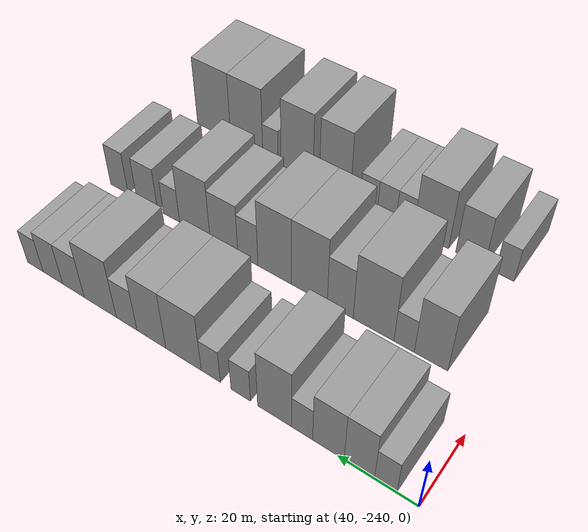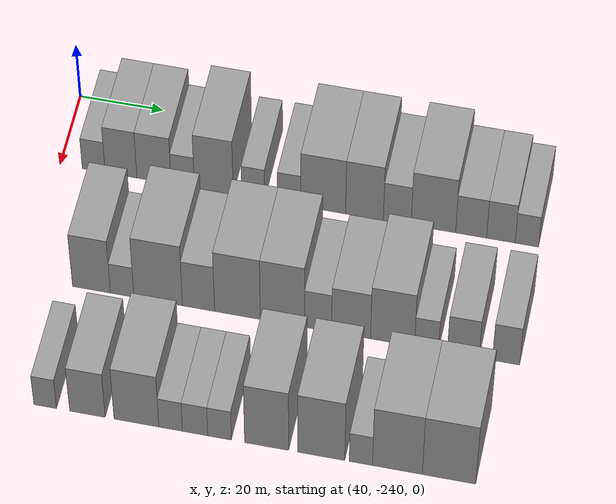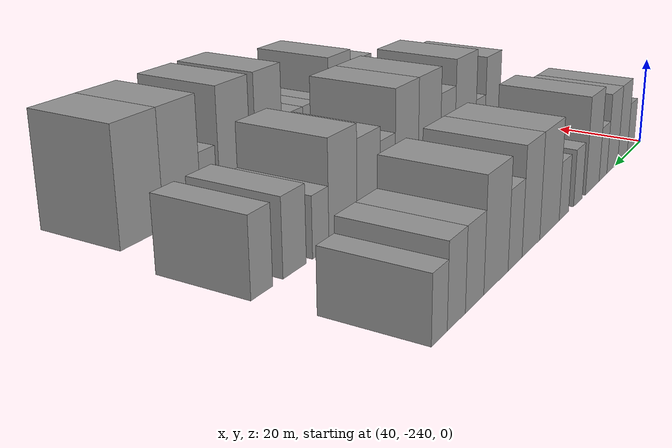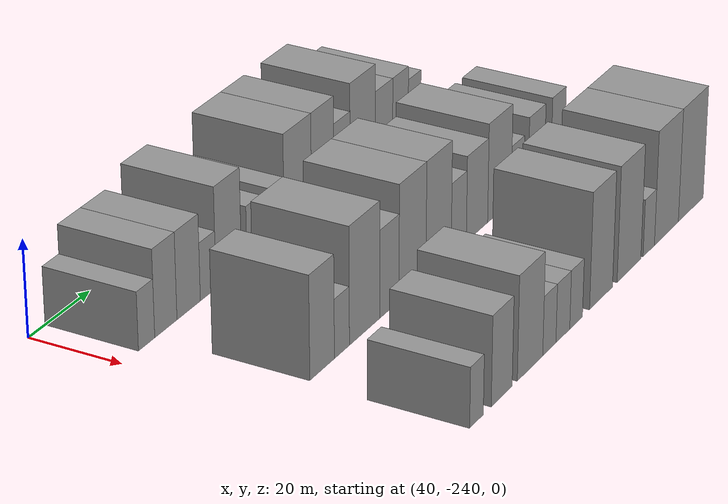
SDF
<sdf version="1.6">
 <world name="default">
  <model name="building_15">
   <static>1</static>
   <pose>50.0000 -231.9547 0 0.000000 0.000000 0.000000</pose>
   <link name="link">
    <pose>0 0 6.00 0 0 0</pose>
    <collision name="collision"><geometry><box><size>20.0000 5.4256 12.0000</size></box></geometry></collision>
    <visual name="visual">
     <cast_shadows>0</cast_shadows>
     <geometry><box><size>20.0000 5.4256 12.0000</size></box></geometry>
     <material>
      <script>
       <uri>model://grey_wall/materials/scripts</uri>
       <uri>model://grey_wall/materials/textures</uri>
       <name>vrc/grey_wall</name>
      </script>
     </material>
    </visual>
   </link>
  </model>
  <model name="building_16">
   <static>1</static>
   <pose>50.0000 -225.4672 0 0.000000 0.000000 0.000000</pose>
   <link name="link">
    <pose>0 0 9.00 0 0 0</pose>
    <collision name="collision"><geometry><box><size>20.0000 7.5494 18.0000</size></box></geometry></collision>
    <visual name="visual">
     <cast_shadows>0</cast_shadows>
     <geometry><box><size>20.0000 7.5494 18.0000</size></box></geometry>
     <material>
      <script>
       <uri>model://grey_wall/materials/scripts</uri>
       <uri>model://grey_wall/materials/textures</uri>
       <name>vrc/grey_wall</name>
      </script>
     </material>
    </visual>
   </link>
  </model>
  <model name="building_17">
   <static>1</static>
   <pose>50.0000 -217.6418 0 0.000000 0.000000 0.000000</pose>
   <link name="link">
    <pose>0 0 9.00 0 0 0</pose>
    <collision name="collision"><geometry><box><size>20.0000 8.1012 18.0000</size></box></geometry></collision>
    <visual name="visual">
     <cast_shadows>0</cast_shadows>
     <geometry><box><size>20.0000 8.1012 18.0000</size></box></geometry>
     <material>
      <script>
       <uri>model://grey_wall/materials/scripts</uri>
       <uri>model://grey_wall/materials/textures</uri>
       <name>vrc/grey_wall</name>
      </script>
     </material>
    </visual>
   </link>
  </model>
  <model name="building_18">
   <static>1</static>
   <pose>50.0000 -210.8297 0 0.000000 0.000000 0.000000</pose>
   <link name="link">
    <pose>0 0 6.00 0 0 0</pose>
    <collision name="collision"><geometry><box><size>20.0000 5.5230 12.0000</size></box></geometry></collision>
    <visual name="visual">
     <cast_shadows>0</cast_shadows>
     <geometry><box><size>20.0000 5.5230 12.0000</size></box></geometry>
     <material>
      <script>
       <uri>model://grey_wall/materials/scripts</uri>
       <uri>model://grey_wall/materials/textures</uri>
       <name>vrc/grey_wall</name>
      </script>
     </material>
    </visual>
   </link>
  </model>
  <model name="building_19">
   <static>1</static>
   <pose>50.0000 -203.4928 0 0.000000 0.000000 0.000000</pose>
   <link name="link">
    <pose>0 0 10.50 0 0 0</pose>
    <collision name="collision"><geometry><box><size>20.0000 9.1509 21.0000</size></box></geometry></collision>
    <visual name="visual">
     <cast_shadows>0</cast_shadows>
     <geometry><box><size>20.0000 9.1509 21.0000</size></box></geometry>
     <material>
      <script>
       <uri>model://grey_wall/materials/scripts</uri>
       <uri>model://grey_wall/materials/textures</uri>
       <name>vrc/grey_wall</name>
      </script>
     </material>
    </visual>
   </link>
  </model>
  <model name="building_20">
   <static>1</static>
   <pose>50.0000 -194.2087 0 0.000000 0.000000 0.000000</pose>
   <link name="link">
    <pose>0 0 6.00 0 0 0</pose>
    <collision name="collision"><geometry><box><size>20.0000 5.4173 12.0000</size></box></geometry></collision>
    <visual name="visual">
     <cast_shadows>0</cast_shadows>
     <geometry><box><size>20.0000 5.4173 12.0000</size></box></geometry>
     <material>
      <script>
       <uri>model://grey_wall/materials/scripts</uri>
       <uri>model://grey_wall/materials/textures</uri>
       <name>vrc/grey_wall</name>
      </script>
     </material>
    </visual>
   </link>
  </model>
  <model name="building_21">
   <static>1</static>
   <pose>50.0000 -185.7538 0 0.000000 0.000000 0.000000</pose>
   <link name="link">
    <pose>0 0 6.00 0 0 0</pose>
    <collision name="collision"><geometry><box><size>20.0000 5.4925 12.0000</size></box></geometry></collision>
    <visual name="visual">
     <cast_shadows>0</cast_shadows>
     <geometry><box><size>20.0000 5.4925 12.0000</size></box></geometry>
     <material>
      <script>
       <uri>model://grey_wall/materials/scripts</uri>
       <uri>model://grey_wall/materials/textures</uri>
       <name>vrc/grey_wall</name>
      </script>
     </material>
    </visual>
   </link>
  </model>
  <model name="building_22">
   <static>1</static>
   <pose>50.0000 -177.7579 0 0.000000 0.000000 0.000000</pose>
   <link name="link">
    <pose>0 0 10.50 0 0 0</pose>
    <collision name="collision"><geometry><box><size>20.0000 10.4993 21.0000</size></box></geometry></collision>
    <visual name="visual">
     <cast_shadows>0</cast_shadows>
     <geometry><box><size>20.0000 10.4993 21.0000</size></box></geometry>
     <material>
      <script>
       <uri>model://grey_wall/materials/scripts</uri>
       <uri>model://grey_wall/materials/textures</uri>
       <name>vrc/grey_wall</name>
      </script>
     </material>
    </visual>
   </link>
  </model>
  <model name="building_23">
   <static>1</static>
   <pose>50.0000 -168.1030 0 0.000000 0.000000 0.000000</pose>
   <link name="link">
    <pose>0 0 10.50 0 0 0</pose>
    <collision name="collision"><geometry><box><size>20.0000 8.8106 21.0000</size></box></geometry></collision>
    <visual name="visual">
     <cast_shadows>0</cast_shadows>
     <geometry><box><size>20.0000 8.8106 21.0000</size></box></geometry>
     <material>
      <script>
       <uri>model://grey_wall/materials/scripts</uri>
       <uri>model://grey_wall/materials/textures</uri>
       <name>vrc/grey_wall</name>
      </script>
     </material>
    </visual>
   </link>
  </model>
  <model name="building_24">
   <static>1</static>
   <pose>50.0000 -160.4572 0 0.000000 0.000000 0.000000</pose>
   <link name="link">
    <pose>0 0 7.50 0 0 0</pose>
    <collision name="collision"><geometry><box><size>20.0000 6.4809 15.0000</size></box></geometry></collision>
    <visual name="visual">
     <cast_shadows>0</cast_shadows>
     <geometry><box><size>20.0000 6.4809 15.0000</size></box></geometry>
     <material>
      <script>
       <uri>model://grey_wall/materials/scripts</uri>
       <uri>model://grey_wall/materials/textures</uri>
       <name>vrc/grey_wall</name>
      </script>
     </material>
    </visual>
   </link>
  </model>
  <model name="building_25">
   <static>1</static>
   <pose>50.0000 -152.0368 0 0.000000 0.000000 0.000000</pose>
   <link name="link">
    <pose>0 0 10.50 0 0 0</pose>
    <collision name="collision"><geometry><box><size>20.0000 10.3600 21.0000</size></box></geometry></collision>
    <visual name="visual">
     <cast_shadows>0</cast_shadows>
     <geometry><box><size>20.0000 10.3600 21.0000</size></box></geometry>
     <material>
      <script>
       <uri>model://grey_wall/materials/scripts</uri>
       <uri>model://grey_wall/materials/textures</uri>
       <name>vrc/grey_wall</name>
      </script>
     </material>
    </visual>
   </link>
  </model>
  <model name="building_26">
   <static>1</static>
   <pose>50.0000 -143.2596 0 0.000000 0.000000 0.000000</pose>
   <link name="link">
    <pose>0 0 7.50 0 0 0</pose>
    <collision name="collision"><geometry><box><size>20.0000 7.1944 15.0000</size></box></geometry></collision>
    <visual name="visual">
     <cast_shadows>0</cast_shadows>
     <geometry><box><size>20.0000 7.1944 15.0000</size></box></geometry>
     <material>
      <script>
       <uri>model://grey_wall/materials/scripts</uri>
       <uri>model://grey_wall/materials/textures</uri>
       <name>vrc/grey_wall</name>
      </script>
     </material>
    </visual>
   </link>
  </model>
  <model name="building_27">
   <static>1</static>
   <pose>50.0000 -136.3600 0 0.000000 0.000000 0.000000</pose>
   <link name="link">
    <pose>0 0 7.50 0 0 0</pose>
    <collision name="collision"><geometry><box><size>20.0000 6.6048 15.0000</size></box></geometry></collision>
    <visual name="visual">
     <cast_shadows>0</cast_shadows>
     <geometry><box><size>20.0000 6.6048 15.0000</size></box></geometry>
     <material>
      <script>
       <uri>model://grey_wall/materials/scripts</uri>
       <uri>model://grey_wall/materials/textures</uri>
       <name>vrc/grey_wall</name>
      </script>
     </material>
    </visual>
   </link>
  </model>
  <model name="building_28">
   <static>1</static>
   <pose>50.0000 -130.3488 0 0.000000 0.000000 0.000000</pose>
   <link name="link">
    <pose>0 0 6.00 0 0 0</pose>
    <collision name="collision"><geometry><box><size>20.0000 5.4176 12.0000</size></box></geometry></collision>
    <visual name="visual">
     <cast_shadows>0</cast_shadows>
     <geometry><box><size>20.0000 5.4176 12.0000</size></box></geometry>
     <material>
      <script>
       <uri>model://grey_wall/materials/scripts</uri>
       <uri>model://grey_wall/materials/textures</uri>
       <name>vrc/grey_wall</name>
      </script>
     </material>
    </visual>
   </link>
  </model>
  <model name="building_90">
   <static>1</static>
   <pose>82.0000 -224.7203 0 0.000000 0.000000 0.000000</pose>
   <link name="link">
    <pose>0 0 10.50 0 0 0</pose>
    <collision name="collision"><geometry><box><size>20.0000 8.7859 21.0000</size></box></geometry></collision>
    <visual name="visual">
     <cast_shadows>0</cast_shadows>
     <geometry><box><size>20.0000 8.7859 21.0000</size></box></geometry>
     <material>
      <script>
       <uri>model://grey_wall/materials/scripts</uri>
       <uri>model://grey_wall/materials/textures</uri>
       <name>vrc/grey_wall</name>
      </script>
     </material>
    </visual>
   </link>
  </model>
  <model name="building_91">
   <static>1</static>
   <pose>82.0000 -217.5975 0 0.000000 0.000000 0.000000</pose>
   <link name="link">
    <pose>0 0 6.00 0 0 0</pose>
    <collision name="collision"><geometry><box><size>20.0000 5.4596 12.0000</size></box></geometry></collision>
    <visual name="visual">
     <cast_shadows>0</cast_shadows>
     <geometry><box><size>20.0000 5.4596 12.0000</size></box></geometry>
     <material>
      <script>
       <uri>model://grey_wall/materials/scripts</uri>
       <uri>model://grey_wall/materials/textures</uri>
       <name>vrc/grey_wall</name>
      </script>
     </material>
    </visual>
   </link>
  </model>
  <model name="building_92">
   <static>1</static>
   <pose>82.0000 -209.2416 0 0.000000 0.000000 0.000000</pose>
   <link name="link">
    <pose>0 0 12.00 0 0 0</pose>
    <collision name="collision"><geometry><box><size>20.0000 11.2521 24.0000</size></box></geometry></collision>
    <visual name="visual">
     <cast_shadows>0</cast_shadows>
     <geometry><box><size>20.0000 11.2521 24.0000</size></box></geometry>
     <material>
      <script>
       <uri>model://grey_wall/materials/scripts</uri>
       <uri>model://grey_wall/materials/textures</uri>
       <name>vrc/grey_wall</name>
      </script>
     </material>
    </visual>
   </link>
  </model>
  <model name="building_93">
   <static>1</static>
   <pose>82.0000 -199.9078 0 0.000000 0.000000 0.000000</pose>
   <link name="link">
    <pose>0 0 9.00 0 0 0</pose>
    <collision name="collision"><geometry><box><size>20.0000 7.4155 18.0000</size></box></geometry></collision>
    <visual name="visual">
     <cast_shadows>0</cast_shadows>
     <geometry><box><size>20.0000 7.4155 18.0000</size></box></geometry>
     <material>
      <script>
       <uri>model://grey_wall/materials/scripts</uri>
       <uri>model://grey_wall/materials/textures</uri>
       <name>vrc/grey_wall</name>
      </script>
     </material>
    </visual>
   </link>
  </model>
  <model name="building_94">
   <static>1</static>
   <pose>82.0000 -190.9318 0 0.000000 0.000000 0.000000</pose>
   <link name="link">
    <pose>0 0 12.00 0 0 0</pose>
    <collision name="collision"><geometry><box><size>20.0000 10.5365 24.0000</size></box></geometry></collision>
    <visual name="visual">
     <cast_shadows>0</cast_shadows>
     <geometry><box><size>20.0000 10.5365 24.0000</size></box></geometry>
     <material>
      <script>
       <uri>model://grey_wall/materials/scripts</uri>
       <uri>model://grey_wall/materials/textures</uri>
       <name>vrc/grey_wall</name>
      </script>
     </material>
    </visual>
   </link>
  </model>
  <model name="building_95">
   <static>1</static>
   <pose>82.0000 -180.5960 0 0.000000 0.000000 0.000000</pose>
   <link name="link">
    <pose>0 0 12.00 0 0 0</pose>
    <collision name="collision"><geometry><box><size>20.0000 10.1352 24.0000</size></box></geometry></collision>
    <visual name="visual">
     <cast_shadows>0</cast_shadows>
     <geometry><box><size>20.0000 10.1352 24.0000</size></box></geometry>
     <material>
      <script>
       <uri>model://grey_wall/materials/scripts</uri>
       <uri>model://grey_wall/materials/textures</uri>
       <name>vrc/grey_wall</name>
      </script>
     </material>
    </visual>
   </link>
  </model>
  <model name="building_96">
   <static>1</static>
   <pose>82.0000 -172.4311 0 0.000000 0.000000 0.000000</pose>
   <link name="link">
    <pose>0 0 7.50 0 0 0</pose>
    <collision name="collision"><geometry><box><size>20.0000 6.1946 15.0000</size></box></geometry></collision>
    <visual name="visual">
     <cast_shadows>0</cast_shadows>
     <geometry><box><size>20.0000 6.1946 15.0000</size></box></geometry>
     <material>
      <script>
       <uri>model://grey_wall/materials/scripts</uri>
       <uri>model://grey_wall/materials/textures</uri>
       <name>vrc/grey_wall</name>
      </script>
     </material>
    </visual>
   </link>
  </model>
  <model name="building_97">
   <static>1</static>
   <pose>82.0000 -164.8817 0 0.000000 0.000000 0.000000</pose>
   <link name="link">
    <pose>0 0 9.00 0 0 0</pose>
    <collision name="collision"><geometry><box><size>20.0000 8.9042 18.0000</size></box></geometry></collision>
    <visual name="visual">
     <cast_shadows>0</cast_shadows>
     <geometry><box><size>20.0000 8.9042 18.0000</size></box></geometry>
     <material>
      <script>
       <uri>model://grey_wall/materials/scripts</uri>
       <uri>model://grey_wall/materials/textures</uri>
       <name>vrc/grey_wall</name>
      </script>
     </material>
    </visual>
   </link>
  </model>
  <model name="building_98">
   <static>1</static>
   <pose>82.0000 -155.4103 0 0.000000 0.000000 0.000000</pose>
   <link name="link">
    <pose>0 0 10.50 0 0 0</pose>
    <collision name="collision"><geometry><box><size>20.0000 10.0386 21.0000</size></box></geometry></collision>
    <visual name="visual">
     <cast_shadows>0</cast_shadows>
     <geometry><box><size>20.0000 10.0386 21.0000</size></box></geometry>
     <material>
      <script>
       <uri>model://grey_wall/materials/scripts</uri>
       <uri>model://grey_wall/materials/textures</uri>
       <name>vrc/grey_wall</name>
      </script>
     </material>
    </visual>
   </link>
  </model>
  <model name="building_99">
   <static>1</static>
   <pose>82.0000 -147.6497 0 0.000000 0.000000 0.000000</pose>
   <link name="link">
    <pose>0 0 6.00 0 0 0</pose>
    <collision name="collision"><geometry><box><size>20.0000 5.4827 12.0000</size></box></geometry></collision>
    <visual name="visual">
     <cast_shadows>0</cast_shadows>
     <geometry><box><size>20.0000 5.4827 12.0000</size></box></geometry>
     <material>
      <script>
       <uri>model://grey_wall/materials/scripts</uri>
       <uri>model://grey_wall/materials/textures</uri>
       <name>vrc/grey_wall</name>
      </script>
     </material>
    </visual>
   </link>
  </model>
  <model name="building_100">
   <static>1</static>
   <pose>82.0000 -139.3034 0 0.000000 0.000000 0.000000</pose>
   <link name="link">
    <pose>0 0 7.50 0 0 0</pose>
    <collision name="collision"><geometry><box><size>20.0000 7.2098 15.0000</size></box></geometry></collision>
    <visual name="visual">
     <cast_shadows>0</cast_shadows>
     <geometry><box><size>20.0000 7.2098 15.0000</size></box></geometry>
     <material>
      <script>
       <uri>model://grey_wall/materials/scripts</uri>
       <uri>model://grey_wall/materials/textures</uri>
       <name>vrc/grey_wall</name>
      </script>
     </material>
    </visual>
   </link>
  </model>
  <model name="building_101">
   <static>1</static>
   <pose>82.0000 -129.6141 0 0.000000 0.000000 0.000000</pose>
   <link name="link">
    <pose>0 0 7.50 0 0 0</pose>
    <collision name="collision"><geometry><box><size>20.0000 6.1689 15.0000</size></box></geometry></collision>
    <visual name="visual">
     <cast_shadows>0</cast_shadows>
     <geometry><box><size>20.0000 6.1689 15.0000</size></box></geometry>
     <material>
      <script>
       <uri>model://grey_wall/materials/scripts</uri>
       <uri>model://grey_wall/materials/textures</uri>
       <name>vrc/grey_wall</name>
      </script>
     </material>
    </visual>
   </link>
  </model>
  <model name="building_166">
   <static>1</static>
   <pose>114.0000 -227.4890 0 0.000000 0.000000 0.000000</pose>
   <link name="link">
    <pose>0 0 6.00 0 0 0</pose>
    <collision name="collision"><geometry><box><size>20.0000 5.1484 12.0000</size></box></geometry></collision>
    <visual name="visual">
     <cast_shadows>0</cast_shadows>
     <geometry><box><size>20.0000 5.1484 12.0000</size></box></geometry>
     <material>
      <script>
       <uri>model://grey_wall/materials/scripts</uri>
       <uri>model://grey_wall/materials/textures</uri>
       <name>vrc/grey_wall</name>
      </script>
     </material>
    </visual>
   </link>
  </model>
  <model name="building_167">
   <static>1</static>
   <pose>114.0000 -217.8749 0 0.000000 0.000000 0.000000</pose>
   <link name="link">
    <pose>0 0 9.00 0 0 0</pose>
    <collision name="collision"><geometry><box><size>20.0000 8.0796 18.0000</size></box></geometry></collision>
    <visual name="visual">
     <cast_shadows>0</cast_shadows>
     <geometry><box><size>20.0000 8.0796 18.0000</size></box></geometry>
     <material>
      <script>
       <uri>model://grey_wall/materials/scripts</uri>
       <uri>model://grey_wall/materials/textures</uri>
       <name>vrc/grey_wall</name>
      </script>
     </material>
    </visual>
   </link>
  </model>
  <model name="building_168">
   <static>1</static>
   <pose>114.0000 -206.7710 0 0.000000 0.000000 0.000000</pose>
   <link name="link">
    <pose>0 0 10.50 0 0 0</pose>
    <collision name="collision"><geometry><box><size>20.0000 10.1282 21.0000</size></box></geometry></collision>
    <visual name="visual">
     <cast_shadows>0</cast_shadows>
     <geometry><box><size>20.0000 10.1282 21.0000</size></box></geometry>
     <material>
      <script>
       <uri>model://grey_wall/materials/scripts</uri>
       <uri>model://grey_wall/materials/textures</uri>
       <name>vrc/grey_wall</name>
      </script>
     </material>
    </visual>
   </link>
  </model>
  <model name="building_169">
   <static>1</static>
   <pose>114.0000 -199.0337 0 0.000000 0.000000 0.000000</pose>
   <link name="link">
    <pose>0 0 6.00 0 0 0</pose>
    <collision name="collision"><geometry><box><size>20.0000 5.3463 12.0000</size></box></geometry></collision>
    <visual name="visual">
     <cast_shadows>0</cast_shadows>
     <geometry><box><size>20.0000 5.3463 12.0000</size></box></geometry>
     <material>
      <script>
       <uri>model://grey_wall/materials/scripts</uri>
       <uri>model://grey_wall/materials/textures</uri>
       <name>vrc/grey_wall</name>
      </script>
     </material>
    </visual>
   </link>
  </model>
  <model name="building_170">
   <static>1</static>
   <pose>114.0000 -193.5147 0 0.000000 0.000000 0.000000</pose>
   <link name="link">
    <pose>0 0 6.00 0 0 0</pose>
    <collision name="collision"><geometry><box><size>20.0000 5.6919 12.0000</size></box></geometry></collision>
    <visual name="visual">
     <cast_shadows>0</cast_shadows>
     <geometry><box><size>20.0000 5.6919 12.0000</size></box></geometry>
     <material>
      <script>
       <uri>model://grey_wall/materials/scripts</uri>
       <uri>model://grey_wall/materials/textures</uri>
       <name>vrc/grey_wall</name>
      </script>
     </material>
    </visual>
   </link>
  </model>
  <model name="building_171">
   <static>1</static>
   <pose>114.0000 -188.0011 0 0.000000 0.000000 0.000000</pose>
   <link name="link">
    <pose>0 0 6.00 0 0 0</pose>
    <collision name="collision"><geometry><box><size>20.0000 5.3353 12.0000</size></box></geometry></collision>
    <visual name="visual">
     <cast_shadows>0</cast_shadows>
     <geometry><box><size>20.0000 5.3353 12.0000</size></box></geometry>
     <material>
      <script>
       <uri>model://grey_wall/materials/scripts</uri>
       <uri>model://grey_wall/materials/textures</uri>
       <name>vrc/grey_wall</name>
      </script>
     </material>
    </visual>
   </link>
  </model>
  <model name="building_172">
   <static>1</static>
   <pose>114.0000 -177.3950 0 0.000000 0.000000 0.000000</pose>
   <link name="link">
    <pose>0 0 12.00 0 0 0</pose>
    <collision name="collision"><geometry><box><size>20.0000 9.8769 24.0000</size></box></geometry></collision>
    <visual name="visual">
     <cast_shadows>0</cast_shadows>
     <geometry><box><size>20.0000 9.8769 24.0000</size></box></geometry>
     <material>
      <script>
       <uri>model://grey_wall/materials/scripts</uri>
       <uri>model://grey_wall/materials/textures</uri>
       <name>vrc/grey_wall</name>
      </script>
     </material>
    </visual>
   </link>
  </model>
  <model name="building_173">
   <static>1</static>
   <pose>114.0000 -165.1748 0 0.000000 0.000000 0.000000</pose>
   <link name="link">
    <pose>0 0 12.00 0 0 0</pose>
    <collision name="collision"><geometry><box><size>20.0000 10.5636 24.0000</size></box></geometry></collision>
    <visual name="visual">
     <cast_shadows>0</cast_shadows>
     <geometry><box><size>20.0000 10.5636 24.0000</size></box></geometry>
     <material>
      <script>
       <uri>model://grey_wall/materials/scripts</uri>
       <uri>model://grey_wall/materials/textures</uri>
       <name>vrc/grey_wall</name>
      </script>
     </material>
    </visual>
   </link>
  </model>
  <model name="building_174">
   <static>1</static>
   <pose>114.0000 -156.3089 0 0.000000 0.000000 0.000000</pose>
   <link name="link">
    <pose>0 0 6.00 0 0 0</pose>
    <collision name="collision"><geometry><box><size>20.0000 5.1680 12.0000</size></box></geometry></collision>
    <visual name="visual">
     <cast_shadows>0</cast_shadows>
     <geometry><box><size>20.0000 5.1680 12.0000</size></box></geometry>
     <material>
      <script>
       <uri>model://grey_wall/materials/scripts</uri>
       <uri>model://grey_wall/materials/textures</uri>
       <name>vrc/grey_wall</name>
      </script>
     </material>
    </visual>
   </link>
  </model>
  <model name="building_175">
   <static>1</static>
   <pose>114.0000 -148.1710 0 0.000000 0.000000 0.000000</pose>
   <link name="link">
    <pose>0 0 12.00 0 0 0</pose>
    <collision name="collision"><geometry><box><size>20.0000 11.1078 24.0000</size></box></geometry></collision>
    <visual name="visual">
     <cast_shadows>0</cast_shadows>
     <geometry><box><size>20.0000 11.1078 24.0000</size></box></geometry>
     <material>
      <script>
       <uri>model://grey_wall/materials/scripts</uri>
       <uri>model://grey_wall/materials/textures</uri>
       <name>vrc/grey_wall</name>
      </script>
     </material>
    </visual>
   </link>
  </model>
  <model name="building_176">
   <static>1</static>
   <pose>114.0000 -136.6919 0 0.000000 0.000000 0.000000</pose>
   <link name="link">
    <pose>0 0 12.00 0 0 0</pose>
    <collision name="collision"><geometry><box><size>20.0000 11.8506 24.0000</size></box></geometry></collision>
    <visual name="visual">
     <cast_shadows>0</cast_shadows>
     <geometry><box><size>20.0000 11.8506 24.0000</size></box></geometry>
     <material>
      <script>
       <uri>model://grey_wall/materials/scripts</uri>
       <uri>model://grey_wall/materials/textures</uri>
       <name>vrc/grey_wall</name>
      </script>
     </material>
    </visual>
   </link>
  </model>
 </world>
</sdf>
